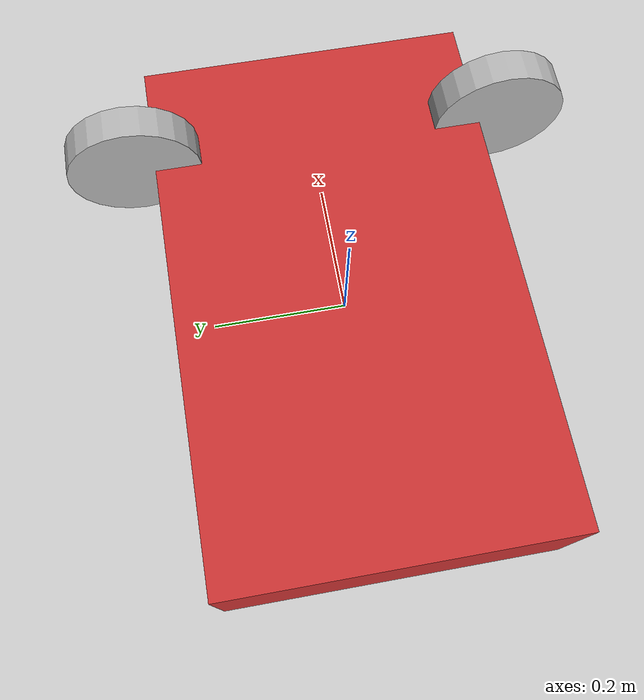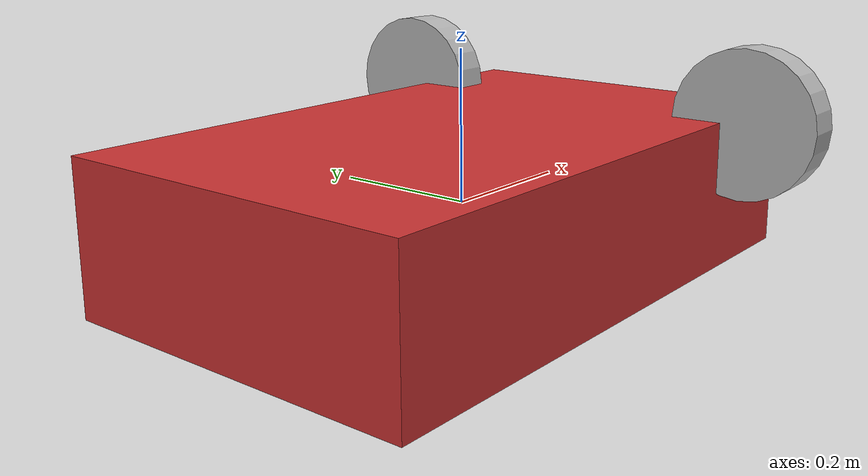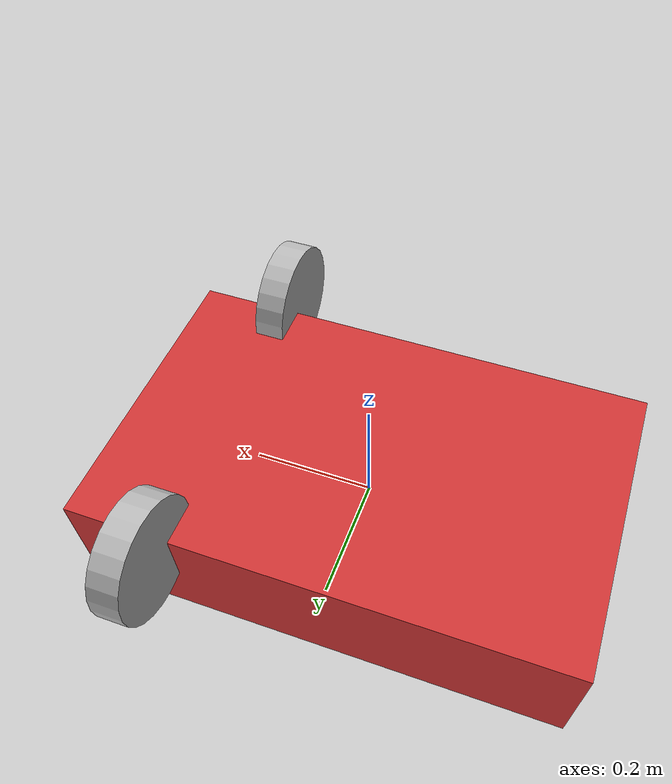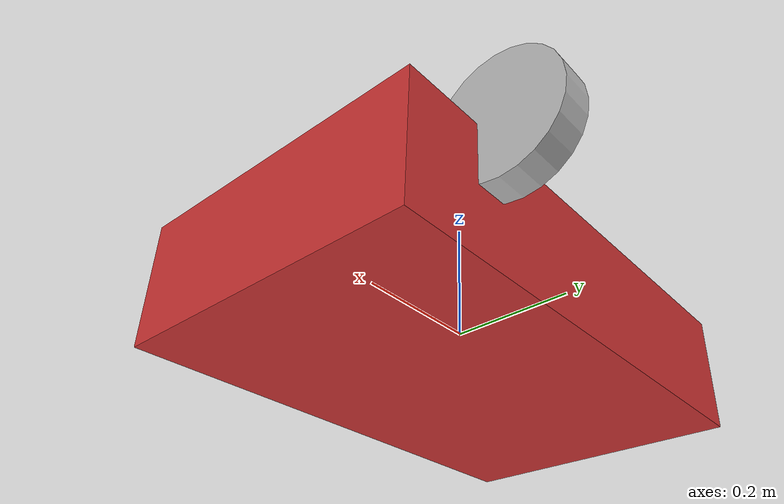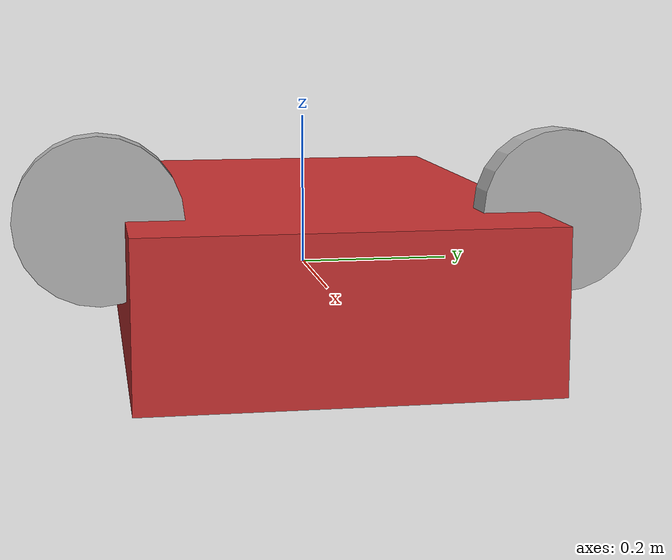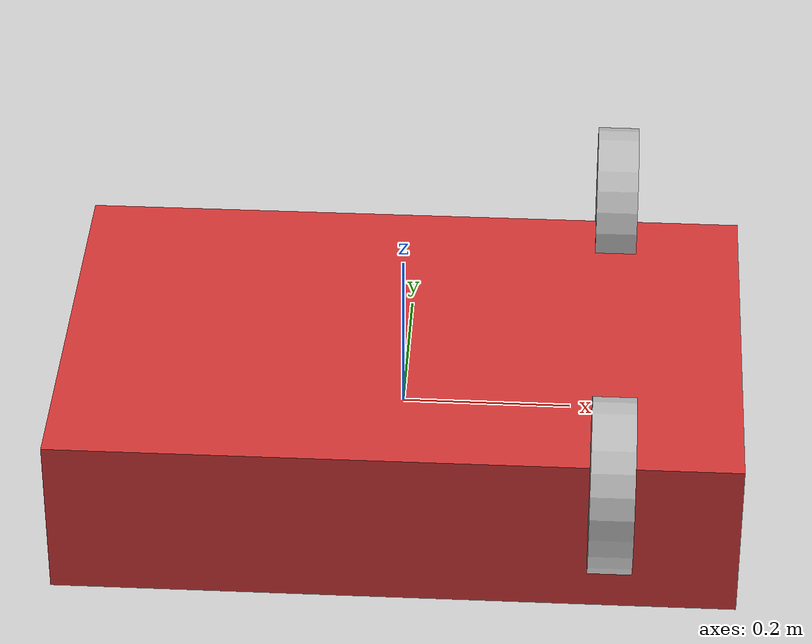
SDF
<?xml version="1.0" ?>
<sdf version="1.6">
  <model name="skyhunter_ugv">
    <static>false</static>
    <!-- CHASSIS (Main Body) -->
    <link name="base_link">
      <inertial><mass>10</mass></inertial>
      <visual name="visual">
        <geometry><box><size>0.8 0.5 0.2</size></box></geometry>
        <material><ambient>0.8 0.2 0.2 1</ambient><diffuse>0.8 0.2 0.2 1</diffuse></material> <!-- Make it Red -->
      </visual>
      <collision name="collision">
        <geometry><box><size>0.8 0.5 0.2</size></box></geometry>
      </collision>
    </link>
    <!-- WHEELS (Just one for this example to keep it simple) -->
    <link name="left_wheel">
        <pose>0.25 0.28 0.1 0 1.5707 0</pose>
        <inertial><mass>1</mass></inertial>
        <visual name="visual"><geometry><cylinder><radius>0.1</radius><length>0.05</length></cylinder></geometry></visual>
        <collision name="collision"><geometry><cylinder><radius>0.1</radius><length>0.05</length></cylinder></geometry></collision>
    </link>
    <link name="right_wheel">
        <pose>0.25 -0.28 0.1 0 1.5707 0</pose>
        <inertial><mass>1</mass></inertial>
        <visual name="visual"><geometry><cylinder><radius>0.1</radius><length>0.05</length></cylinder></geometry></visual>
        <collision name="collision"><geometry><cylinder><radius>0.1</radius><length>0.05</length></cylinder></geometry></collision>
    </link>
    <!-- JOINTS (Connecting wheels to body) -->
    <joint name="left_wheel_joint" type="revolute"><parent>base_link</parent><child>left_wheel</child><axis><xyz>0 1 0</xyz></axis></joint>
    <joint name="right_wheel_joint" type="revolute"><parent>base_link</parent><child>right_wheel</child><axis><xyz>0 1 0</xyz></axis></joint>

    <!-- ROS 2 PLUGIN: This makes the robot drivable via ROS topics! -->
    <plugin name="diff_drive" filename="libgazebo_ros_diff_drive.so">
      <ros>
        <namespace>/</namespace>
      </ros>
      <left_joint>left_wheel_joint</left_joint>
      <right_joint>right_wheel_joint</right_joint>
      <wheel_separation>0.56</wheel_separation>
      <wheel_diameter>0.2</wheel_diameter>
      <publish_odom>true</publish_odom>
      <publish_tf>true</publish_tf>
      <odometry_frame>odom</odometry_frame>
      <robot_base_frame>base_link</robot_base_frame>
    </plugin>
  </model>
</sdf>
